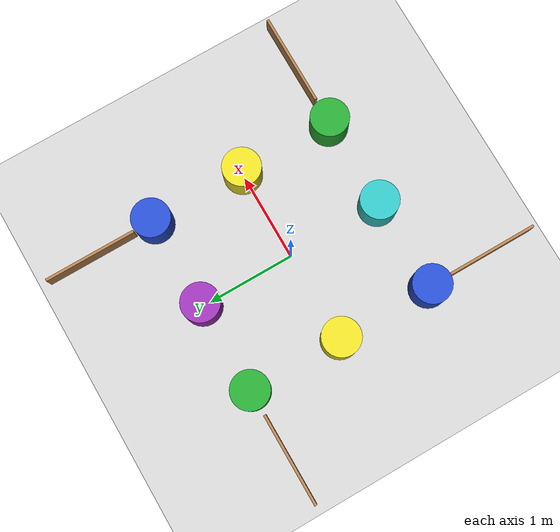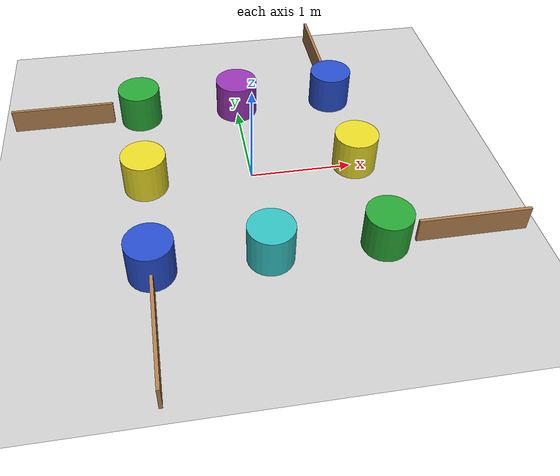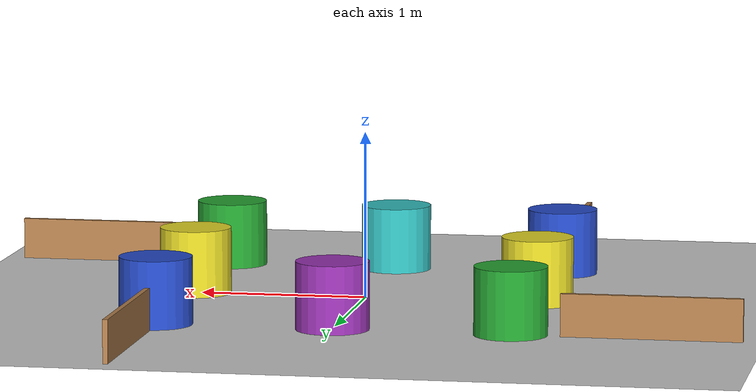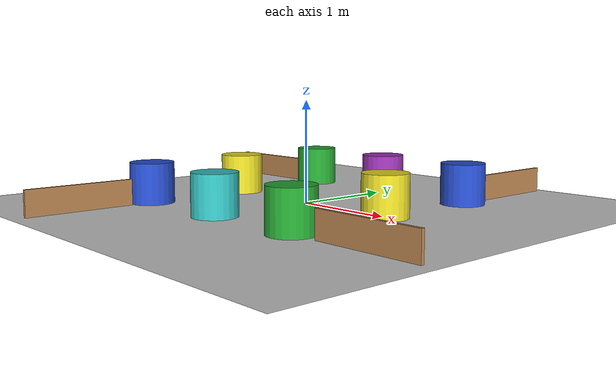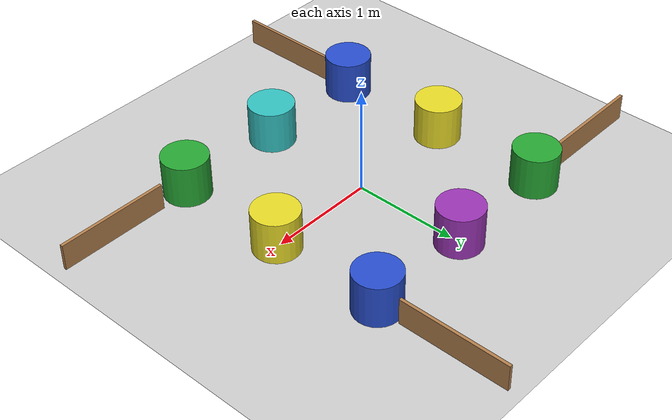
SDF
<?xml version="1.0"?>
<sdf version="1.4">
<model name="obstacle_avoidance">
  <static>true</static>
    <link name="floor">
      <collision name="collision">
        <geometry>
          <plane>
            <normal>0 0 1</normal>
            <size>5.0 5.0</size>
          </plane>
        </geometry>
        <surface>
          <friction>
            <ode>
              <mu>100</mu>
              <mu2>50</mu2>
            </ode>
          </friction>
        </surface>
      </collision>
      <visual name="visual">
        <cast_shadows>false</cast_shadows>
        <geometry>
          <plane>
            <normal>0 0 1</normal>
            <size>5.0 5.0</size>
          </plane>
        </geometry>
        <material>
          <script>
            <uri>model://obstacle_avoidance/materials/scripts</uri>
            <uri>model://obstacle_avoidance/materials/textures</uri>
            <name>ObstacleAvoidanceFloor/Image</name>
          </script>
        </material>
      </visual>
    </link>
    <link name='BLU1'>
      <pose frame=''>-1.04 -1.09678 0.2 0 0 0</pose>
      <collision name='coll'>
        <geometry>
          <cylinder>
            <radius>0.215</radius>
            <length>0.4</length>
          </cylinder>
        </geometry>
        <max_contacts>10</max_contacts>
        <surface>
          <bounce/>
          <friction>
            <ode/>
          </friction>
          <contact>
            <ode/>
          </contact>
        </surface>
      </collision>
      <visual name='vis'>
        <geometry>
          <cylinder>
            <radius>0.215</radius>
            <length>0.4</length>
          </cylinder>
        </geometry>
        <material>
          <script>
            <uri>file://media/materials/scripts/gazebo.material</uri>
            <name>Gazebo/Blue</name>
          </script>
        </material>
      </visual>
    </link>
    <link name='YEL1'>
      <pose frame=''>-1.04 0 0.2 0 0 0</pose>
      <collision name='coll'>
        <geometry>
          <cylinder>
            <radius>0.215</radius>
            <length>0.4</length>
          </cylinder>
        </geometry>
        <max_contacts>10</max_contacts>
        <surface>
          <bounce/>
          <friction>
            <ode/>
          </friction>
          <contact>
            <ode/>
          </contact>
        </surface>
      </collision>
      <visual name='vis'>
        <geometry>
          <cylinder>
            <radius>0.215</radius>
            <length>0.4</length>
          </cylinder>
        </geometry>
        <material>
          <script>
            <uri>file://media/materials/scripts/gazebo.material</uri>
            <name>Gazebo/Yellow</name>
          </script>
        </material>
      </visual>
    </link>
    <link name='GRN1'>
      <pose frame=''>-1.04 1.08321 0.2 0 0 0</pose>
      <collision name='coll'>
        <geometry>
          <cylinder>
            <radius>0.215</radius>
            <length>0.4</length>
          </cylinder>
        </geometry>
        <max_contacts>10</max_contacts>
        <surface>
          <bounce/>
          <friction>
            <ode/>
          </friction>
          <contact>
            <ode/>
          </contact>
        </surface>
      </collision>
      <visual name='vis'>
        <geometry>
          <cylinder>
            <radius>0.215</radius>
            <length>0.4</length>
          </cylinder>
        </geometry>
        <material>
          <script>
            <uri>file://media/materials/scripts/gazebo.material</uri>
            <name>Gazebo/Green</name>
          </script>
        </material>
      </visual>
    </link>
    <link name='PRP1'>
      <pose frame=''>0 1.08321 0.2 0 0 0</pose>
      <collision name='coll'>
        <geometry>
          <cylinder>
            <radius>0.215</radius>
            <length>0.4</length>
          </cylinder>
        </geometry>
        <max_contacts>10</max_contacts>
        <surface>
          <bounce/>
          <friction>
            <ode/>
          </friction>
          <contact>
            <ode/>
          </contact>
        </surface>
      </collision>
      <visual name='vis'>
        <geometry>
          <cylinder>
            <radius>0.215</radius>
            <length>0.4</length>
          </cylinder>
        </geometry>
        <material>
          <script>
            <uri>file://media/materials/scripts/gazebo.material</uri>
            <name>Gazebo/Purple</name>
          </script>
        </material>
      </visual>
    </link>
    <link name='TRQ1'>
      <pose frame=''>0 -1.08320 0.2 0 0 0</pose>
      <collision name='coll'>
        <geometry>
          <cylinder>
            <radius>0.215</radius>
            <length>0.4</length>
          </cylinder>
        </geometry>
        <max_contacts>10</max_contacts>
        <surface>
          <bounce/>
          <friction>
            <ode/>
          </friction>
          <contact>
            <ode/>
          </contact>
        </surface>
      </collision>
      <visual name='vis'>
        <geometry>
          <cylinder>
            <radius>0.215</radius>
            <length>0.4</length>
          </cylinder>
        </geometry>
        <material>
          <script>
            <uri>file://media/materials/scripts/gazebo.material</uri>
            <name>Gazebo/Turquoise</name>
          </script>
        </material>
      </visual>
    </link>
    <link name='GRN2'>
      <pose frame=''>1.04 -1.08320 0.2 0 0 0</pose>
      <collision name='coll'>
        <geometry>
          <cylinder>
            <radius>0.215</radius>
            <length>0.4</length>
          </cylinder>
        </geometry>
        <max_contacts>10</max_contacts>
        <surface>
          <bounce/>
          <friction>
            <ode/>
          </friction>
          <contact>
            <ode/>
          </contact>
        </surface>
      </collision>
      <visual name='vis'>
        <geometry>
          <cylinder>
            <radius>0.215</radius>
            <length>0.4</length>
          </cylinder>
        </geometry>
        <material>
          <script>
            <uri>file://media/materials/scripts/gazebo.material</uri>
            <name>Gazebo/Green</name>
          </script>
        </material>
      </visual>
    </link>
    <link name='YEL2'>
      <pose frame=''>1.04 0 0.2 0 0 0</pose>
      <collision name='coll'>
        <geometry>
          <cylinder>
            <radius>0.215</radius>
            <length>0.4</length>
          </cylinder>
        </geometry>
        <max_contacts>10</max_contacts>
        <surface>
          <bounce/>
          <friction>
            <ode/>
          </friction>
          <contact>
            <ode/>
          </contact>
        </surface>
      </collision>
      <visual name='vis'>
        <geometry>
          <cylinder>
            <radius>0.215</radius>
            <length>0.4</length>
          </cylinder>
        </geometry>
        <material>
          <script>
            <uri>file://media/materials/scripts/gazebo.material</uri>
            <name>Gazebo/Yellow</name>
          </script>
        </material>
      </visual>
    </link>
    <link name='BLU2'>
      <pose frame=''>1.04 1.09678 0.2 0 0 0</pose>
      <collision name='coll'>
        <geometry>
          <cylinder>
            <radius>0.215</radius>
            <length>0.4</length>
          </cylinder>
        </geometry>
        <max_contacts>10</max_contacts>
        <surface>
          <bounce/>
          <friction>
            <ode/>
          </friction>
          <contact>
            <ode/>
          </contact>
        </surface>
      </collision>
      <visual name='vis'>
        <geometry>
          <cylinder>
            <radius>0.215</radius>
            <length>0.4</length>
          </cylinder>
        </geometry>
        <material>
          <script>
            <uri>file://media/materials/scripts/gazebo.material</uri>
            <name>Gazebo/Blue</name>
          </script>
        </material>
      </visual>
    </link>
    <link name='wall_1'>
      <pose frame=''>-1.04 -1.85208 0.125 0 0 0</pose>
      <collision name='coll'>
        <geometry>
          <box>
            <size>0.03 1.05 0.25</size>
          </box>
        </geometry>
      </collision>
      <visual name='vis'>
        <geometry>
          <box>
            <size>0.03 1.05 0.25</size>
          </box>
        </geometry>
        <material>
          <script>
            <uri>file://media/materials/scripts/gazebo.material</uri>
            <name>Gazebo/Wood</name>
          </script>
        </material>
      </visual>
    </link>
    <link name='wall_2'>
      <pose frame=''>-1.85208 1.08321 0.125 0 0 0</pose>
      <collision name='coll'>
        <geometry>
          <box>
            <size>1.05 0.03 0.25</size>
          </box>
        </geometry>
      </collision>
      <visual name='vis'>
        <geometry>
          <box>
            <size>1.05 0.03 0.25</size>
          </box>
        </geometry>
        <material>
          <script>
            <uri>file://media/materials/scripts/gazebo.material</uri>
            <name>Gazebo/Wood</name>
          </script>
        </material>
      </visual>
    </link>
    <link name='wall_3'>
      <pose frame=''>1.04 1.85208 0.125 0 0 0</pose>
      <collision name='coll'>
        <geometry>
          <box>
            <size>0.03 1.05 0.25</size>
          </box>
        </geometry>
      </collision>
      <visual name='vis'>
        <geometry>
          <box>
            <size>0.03 1.05 0.25</size>
          </box>
        </geometry>
        <material>
          <script>
            <uri>file://media/materials/scripts/gazebo.material</uri>
            <name>Gazebo/Wood</name>
          </script>
        </material>
      </visual>
    </link>
    <link name='wall_4'>
      <pose frame=''>1.85208 -1.08320 0.125 0 0 0</pose>
      <collision name='coll'>
        <geometry>
          <box>
            <size>1.05 0.03 0.25</size>
          </box>
        </geometry>
      </collision>
      <visual name='vis'>
        <geometry>
          <box>
            <size>1.05 0.03 0.25</size>
          </box>
        </geometry>
        <material>
          <script>
            <uri>file://media/materials/scripts/gazebo.material</uri>
            <name>Gazebo/Wood</name>
          </script>
        </material>
      </visual>
    </link>
  </model>
</sdf>
